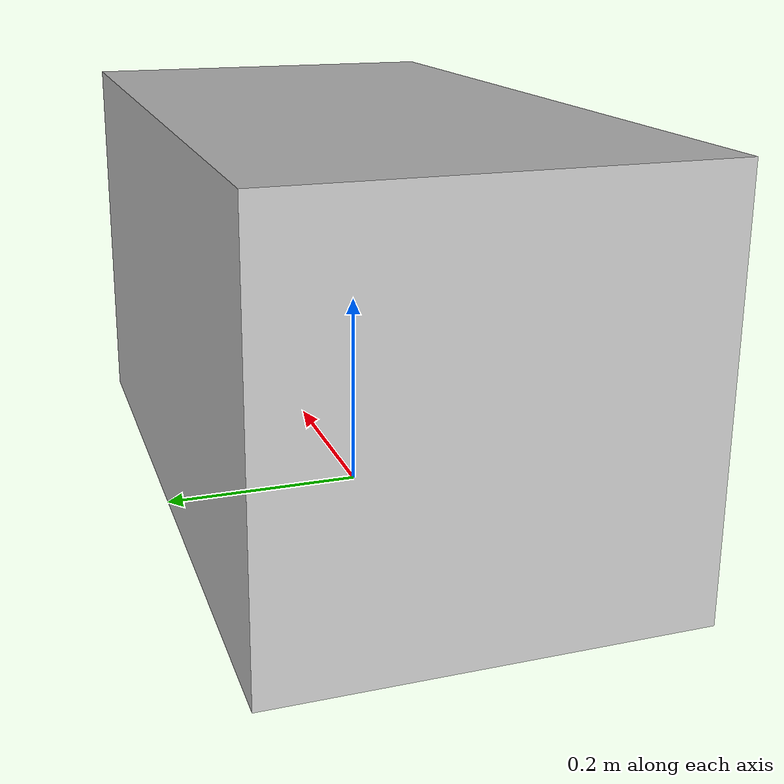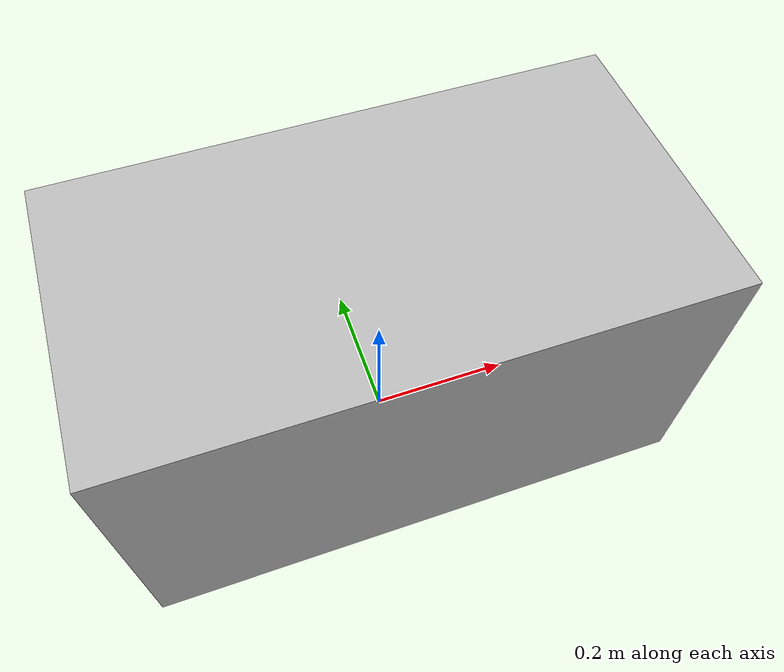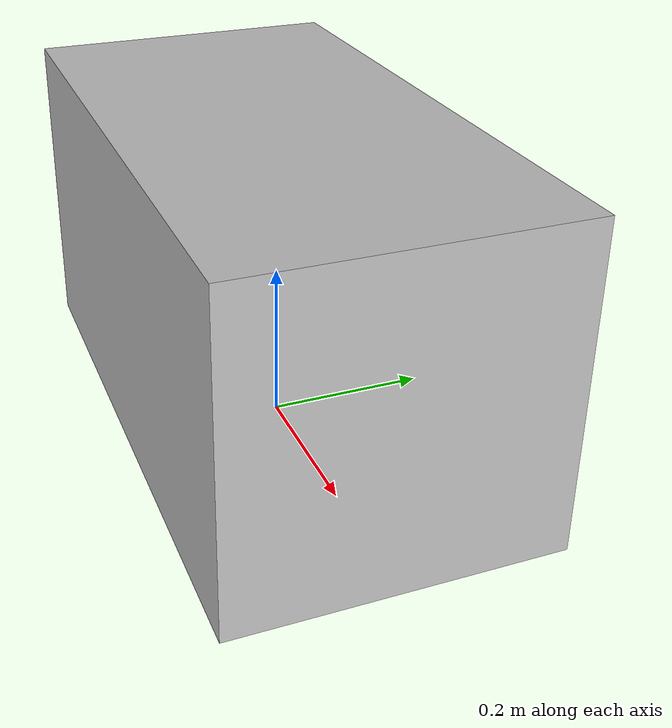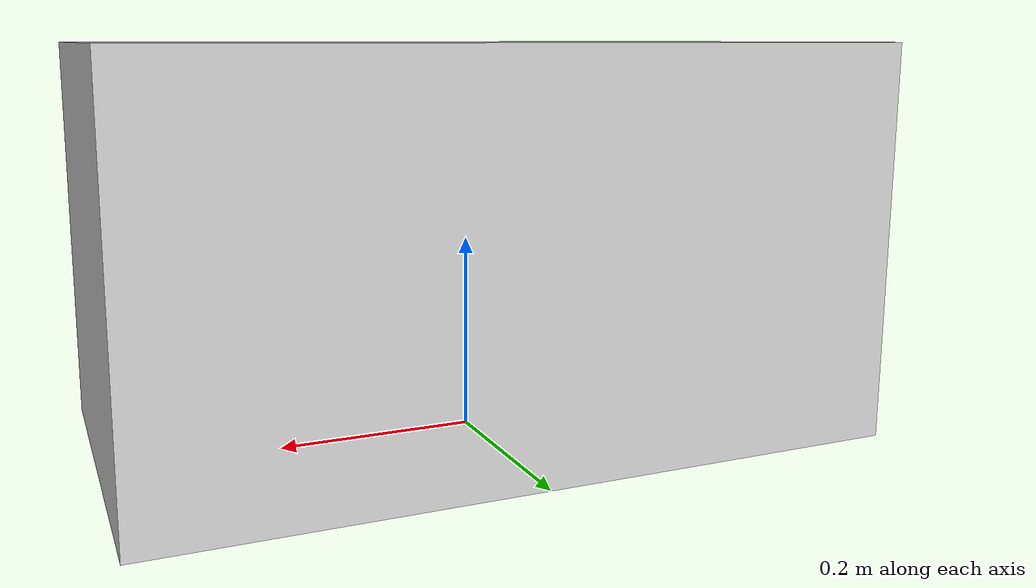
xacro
<robot name="id07_16h5" xmlns:xacro="http://ros.org/wiki/xacro">

	<xacro:property name="X_PI" value="3.1415926535897931" />
	<xacro:property name="X_id" value="dae_block" />
	<link name="${X_id}/base_footprint">
		<visual>
			<geometry>
				<mesh filename="package://robot_descriptions/common/urdf/${X_id}.dae" />
			</geometry>
			<origin xyz="0 0 0" rpy="0 0 0"/>
			<material name="grey"/>
		</visual>
		<collision>
			<geometry>
				<box size="0.75 0.4 0.4"/>
			</geometry>
			<origin xyz="0 0 0" rpy="0 0 0"/>
		</collision>
		<inertial>
			<mass value="1"/> <!-- 2.4/2.6 kg for small/big battery pack -->
			<origin xyz="0 0 0"/>
			<inertia ixx="1" ixy="0.0" ixz="0.0" iyy="1" iyz="0.0" izz="1" />
		</inertial>
	</link>

	<material name="grey">
		<color rgba="0.75 0.75 0.75 1"/>
	</material>

</robot>
